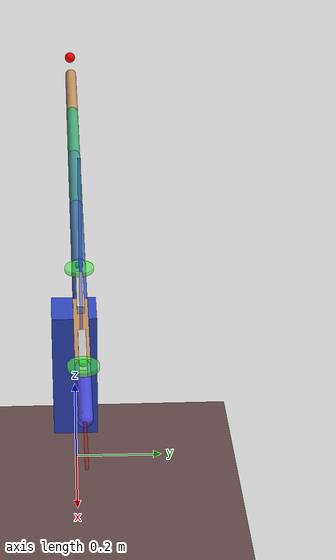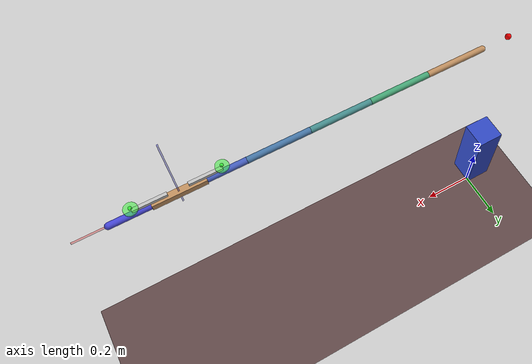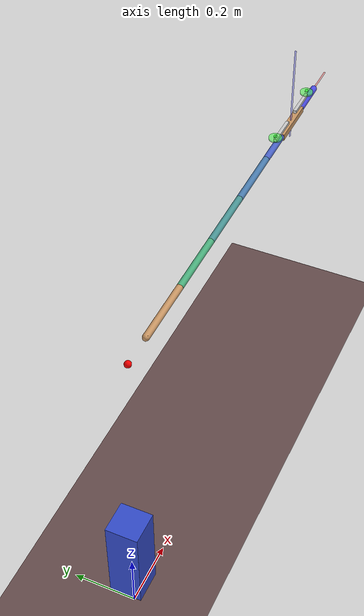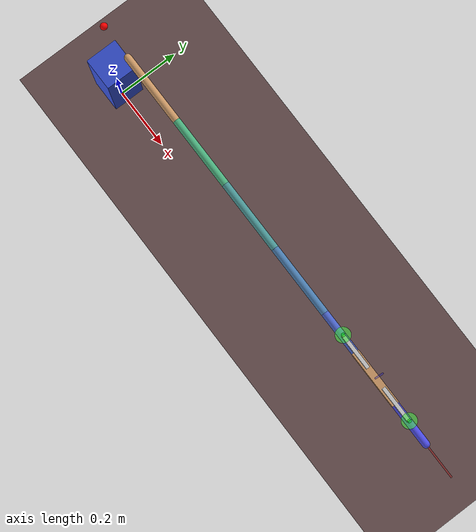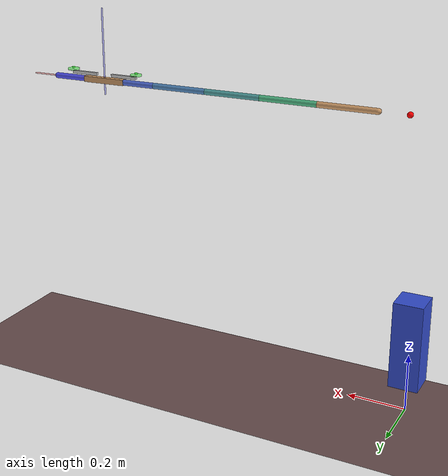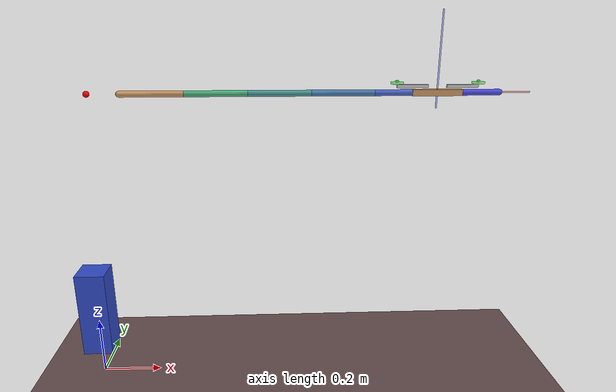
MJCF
<mujoco model="cantilever_2d_drone">
    <compiler angle="degree" inertiafromgeom="true" coordinate="local"/>
    <option timestep="0.01" gravity="0 0 -9.81" density="1" viscosity="1e-5" integrator="RK4"/>

    <default>
        <joint damping="0.0005" stiffness="0.001" limited="true"/>
        <geom conaffinity="0" condim="3" density="500" friction="1 0.5 0.5" margin="0.01" rgba="0.8 0.6 0.4 1"/>
    </default>

    <asset>
        <texture builtin="gradient" type="skybox" height="100" width="100" rgb1="1 1 1" rgb2="0.6 0.8 1"/>
        <texture name="texplane" builtin="checker" height="100" width="100" rgb1="0.7 0.7 0.7" rgb2="0.9 0.9 0.9" type="2d"/>
        <material name="MatPlane" reflectance="0.3" shininess="1" specular="0.5" texrepeat="5 5" texture="texplane"/>
        <material name="MatBeam" specular="0.3" shininess="0.5" rgba="0.3 0.7 0.3 1"/>
        <material name="MatDrone" specular="0.5" shininess="1" rgba="0.8 0.2 0.2 1"/>
    </asset>

    <worldbody>
        <light cutoff="100" diffuse="1 1 1" dir="-0 0 -1.3" directional="true" exponent="1" pos="0 0 1.3" specular=".1 .1 .1"/>
        <geom conaffinity="1" condim="3" material="MatPlane" name="floor" pos="0 0 0" rgba="0.4 0.3 0.3 1" size="5 5 0.2" type="plane"/>
        <geom name="wall" type="box" size="0.05 0.05 0.15" pos="0 0 0.25" rgba="0.2 0.3 0.8 1"/>

        <!-- ⚙️ Base fija de la viga -->
        <body name="beam_base" pos="0.05 0 1.0">
            <site name="base_site" pos="0 0 0" size="0.01" rgba="1 0 0 1"/>
            <!-- 🔗 Barra flexible con 6 segmentos -->
            <body name="seg1" pos="0.1 0 0">
                <joint name="hinge1" type="hinge" axis="0 1 0" range="-15 15"/>
                <geom type="capsule" fromto="0 0 0 0.200 0 0" size="0.01" material="MatBeam" mass="0.017"/>
                <body name="seg2" pos="0.200 0 0">
                    <joint name="hinge2" type="hinge" axis="0 1 0" range="-15 15" damping="0.0005" stiffness="0.0001"/>
                    <geom type="capsule" fromto="0 0 0 0.200 0 0" size="0.01" rgba="0.3 0.70 0.50 1" mass="0.017"/>
                <body name="seg3" pos="0.200 0 0">
                    <joint name="hinge3" type="hinge" axis="0 1 0" range="-15 15" damping="0.0005" stiffness="0.0001"/>
                    <geom type="capsule" fromto="0 0 0 0.200 0 0" size="0.01" rgba="0.3 0.60 0.60 1" mass="0.017"/>
                <body name="seg4" pos="0.200 0 0">
                    <joint name="hinge4" type="hinge" axis="0 1 0" range="-15 15" damping="0.0005" stiffness="0.0001"/>
                    <geom type="capsule" fromto="0 0 0 0.200 0 0" size="0.01" rgba="0.3 0.50 0.70 1" mass="0.017"/>
                <body name="seg5" pos="0.200 0 0">
                    <joint name="hinge5" type="hinge" axis="0 1 0" range="-15 15" damping="0.0005" stiffness="0.0001"/>
                    <geom type="capsule" fromto="0 0 0 0.200 0 0" size="0.01" rgba="0.3 0.40 0.80 1" mass="0.017"/>
                <body name="seg6" pos="0.200 0 0">
                    <joint name="hinge6" type="hinge" axis="0 1 0" range="-15 15" damping="0.0005" stiffness="0.0001"/>
                    <geom type="capsule" fromto="0 0 0 0.200 0 0" size="0.01" rgba="0.3 0.30 0.90 1" mass="0.017"/>

                        <!-- 🚁 Dron 2D fijo al extremo libre -->
                        <body name="drone_2d" pos="0 0 0">
                            <geom name="drone_body" type="box" size="0.08 0.01 0.01" material="MatDrone" mass="0.15"/>
                            <!-- brazos -->
                            <geom name="arm_left"  type="box" pos="-0.08 0 0.02" size="0.05 0.005 0.005" rgba="0.8 0.8 0.8 1"/>
                            <geom name="arm_right" type="box" pos=" 0.08 0 0.02" size="0.05 0.005 0.005" rgba="0.8 0.8 0.8 1"/>
                            <!-- hélices -->
                            <body name="prop_left" pos="-0.13 0 0.03">
                                <geom type="cylinder" size="0.02 0.003" rgba="0.3 1 0.3 0.6"/>
                                <site name="motor_left" pos="0 0 0.003" size="0.005" rgba="0 1 0 0.7" type="cylinder"/>
                            </body>
                            <body name="prop_right" pos="0.13 0 0.03">
                                <geom type="cylinder" size="0.02 0.003" rgba="0.3 1 0.3 0.6"/>
                                <site name="motor_right" pos="0 0 0.003" size="0.005" rgba="0 1 0 0.7" type="cylinder"/>
                            </body>
                            <!-- ejes de referencia -->
                            <site name="x_axis" type="box" pos="0.15 0 0" size="0.15 0.002 0.002" rgba="1 0 0 0.3"/>
                            <site name="z_axis" type="box" pos="0 0 0.1" size="0.002 0.002 0.15" rgba="0 0 1 0.3"/>
                        </body>

                </body>
                </body>
                </body>
                </body>
                </body>
            </body>
        </body>
    </worldbody>

    <!-- ⚙️ Actuadores (2 hélices) -->
    <actuator>
        <motor site="motor_left"  ctrlrange="0 2" gear="0 0 1 0 0 -0.05"/>
        <motor site="motor_right" ctrlrange="0 2" gear="0 0 1 0 0  0.05"/>
    </actuator>

    <!-- 📡 Sensores -->
    <sensor>
        <framepos  name="pos_drone"  objtype="body" objname="drone_2d"/>
        <framequat name="quat_drone" objtype="body" objname="drone_2d"/>
        <framelinvel name="linvel_drone" objtype="body" objname="drone_2d"/>
        <frameangvel name="rotvel_drone" objtype="body" objname="drone_2d"/>
    </sensor>

    <!-- 🧩 Restricción 2D (bloquear movimiento en Y) -->
    <equality>
        <weld name="2d_constraint" active="true" body1="world" body2="beam_base" solimp="0.9 0.95 0.001" solref="0.02 1"/>
    </equality>

</mujoco>
